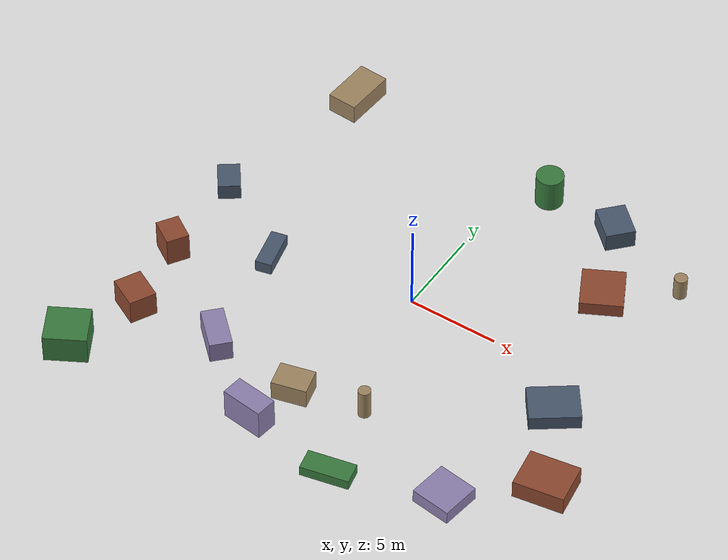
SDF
<sdf version="1.10">
 <world name="robotx_task1_uav_view">
  <gravity>0 0 -9.81</gravity>
  <physics name="physics" type="ode">
   <max_step_size>0.002</max_step_size>
   <real_time_factor>1.0</real_time_factor>
  </physics>
  <scene>
   <ambient>0.14 0.14 0.14 1.0</ambient>
   <background>0.32 0.32 0.38 1.0</background>
   <shadows>true</shadows>
   <grid>false</grid>
  </scene>
  <light name="sun" type="directional">
   <pose>0 0 300 0 0 0</pose>
   <diffuse>0.35 0.35 0.35 1.0</diffuse>
   <specular>0.12 0.12 0.12 1.0</specular>
   <direction>0.12 -0.05 -1.0</direction>
   <attenuation>
    <range>2500</range>
    <constant>0.85</constant>
    <linear>0.001</linear>
    <quadratic>0.00005</quadratic>
   </attenuation>
  </light>
  <plugin filename="gz-sim-physics-system" name="gz::sim::systems::Physics"/>
  <plugin filename="gz-sim-user-commands-system" name="gz::sim::systems::UserCommands"/>
  <plugin filename="gz-sim-scene-broadcaster-system" name="gz::sim::systems::SceneBroadcaster"/>
  <plugin filename="gz-sim-sensors-system" name="gz::sim::systems::Sensors">
   <render_engine>ogre2</render_engine>
  </plugin>
  <model name="scene_clutter_box_000">
   <static>true</static>
   <pose>-10.510 10.721 0.583 0 0 1.509814</pose>
   <link name="link">
    <visual name="v">
     <geometry><box><size>2.830 1.676 1.126</size></box></geometry>
     <material><ambient>0.45 0.38 0.32 1.0</ambient><diffuse>0.62 0.52 0.38 1.0</diffuse></material>
    </visual>
   </link>
  </model>
  <model name="scene_clutter_box_001">
   <static>true</static>
   <pose>-12.513 1.541 0.480 0 0 -0.936353</pose>
   <link name="link">
    <visual name="v">
     <geometry><box><size>1.648 1.210 0.921</size></box></geometry>
     <material><ambient>0.18 0.22 0.28 1.0</ambient><diffuse>0.28 0.34 0.42 1.0</diffuse></material>
    </visual>
   </link>
  </model>
  <model name="scene_clutter_box_002">
   <static>true</static>
   <pose>-11.520 -8.149 0.743 0 0 -0.479108</pose>
   <link name="link">
    <visual name="v">
     <geometry><box><size>1.811 1.491 1.447</size></box></geometry>
     <material><ambient>0.35 0.16 0.12 1.0</ambient><diffuse>0.55 0.28 0.18 1.0</diffuse></material>
    </visual>
   </link>
  </model>
  <model name="scene_clutter_box_003">
   <static>true</static>
   <pose>2.945 -11.992 0.314 0 0 -1.364029</pose>
   <link name="link">
    <visual name="v">
     <geometry><box><size>1.174 2.593 0.588</size></box></geometry>
     <material><ambient>0.12 0.30 0.14 1.0</ambient><diffuse>0.22 0.48 0.24 1.0</diffuse></material>
    </visual>
   </link>
  </model>
  <model name="scene_clutter_box_004">
   <static>true</static>
   <pose>8.570 -10.240 0.406 0 0 -0.138115</pose>
   <link name="link">
    <visual name="v">
     <geometry><box><size>2.188 2.120 0.771</size></box></geometry>
     <material><ambient>0.40 0.35 0.50 1.0</ambient><diffuse>0.55 0.50 0.68 1.0</diffuse></material>
    </visual>
   </link>
  </model>
  <model name="scene_clutter_cyl_005">
   <static>true</static>
   <pose>2.238 -7.738 0.906 0 0 2.147366</pose>
   <link name="link">
    <visual name="v">
     <geometry><cylinder><radius>0.332</radius><length>1.712</length></cylinder></geometry>
     <material><ambient>0.45 0.38 0.32 1.0</ambient><diffuse>0.62 0.52 0.38 1.0</diffuse></material>
    </visual>
   </link>
  </model>
  <model name="scene_clutter_box_006">
   <static>true</static>
   <pose>6.166 9.852 0.547 0 0 2.396833</pose>
   <link name="link">
    <visual name="v">
     <geometry><box><size>2.006 1.596 1.054</size></box></geometry>
     <material><ambient>0.18 0.22 0.28 1.0</ambient><diffuse>0.28 0.34 0.42 1.0</diffuse></material>
    </visual>
   </link>
  </model>
  <model name="scene_clutter_box_007">
   <static>true</static>
   <pose>-12.227 -3.898 0.850 0 0 -2.143069</pose>
   <link name="link">
    <visual name="v">
     <geometry><box><size>1.241 1.537 1.660</size></box></geometry>
     <material><ambient>0.35 0.16 0.12 1.0</ambient><diffuse>0.55 0.28 0.18 1.0</diffuse></material>
    </visual>
   </link>
  </model>
  <model name="scene_clutter_cyl_008">
   <static>true</static>
   <pose>2.004 10.071 0.976 0 0 -1.369597</pose>
   <link name="link">
    <visual name="v">
     <geometry><cylinder><radius>0.749</radius><length>1.851</length></cylinder></geometry>
     <material><ambient>0.12 0.30 0.14 1.0</ambient><diffuse>0.22 0.48 0.24 1.0</diffuse></material>
    </visual>
   </link>
  </model>
  <model name="scene_clutter_box_009">
   <static>true</static>
   <pose>-2.287 -11.240 0.901 0 0 1.442641</pose>
   <link name="link">
    <visual name="v">
     <geometry><box><size>1.164 2.307 1.762</size></box></geometry>
     <material><ambient>0.40 0.35 0.50 1.0</ambient><diffuse>0.55 0.50 0.68 1.0</diffuse></material>
    </visual>
   </link>
  </model>
  <model name="scene_clutter_cyl_010">
   <static>true</static>
   <pose>11.163 7.996 0.675 0 0 0.749036</pose>
   <link name="link">
    <visual name="v">
     <geometry><cylinder><radius>0.356</radius><length>1.250</length></cylinder></geometry>
     <material><ambient>0.45 0.38 0.32 1.0</ambient><diffuse>0.62 0.52 0.38 1.0</diffuse></material>
    </visual>
   </link>
  </model>
  <model name="scene_clutter_box_011">
   <static>true</static>
   <pose>10.026 -2.458 0.425 0 0 0.627296</pose>
   <link name="link">
    <visual name="v">
     <geometry><box><size>2.662 2.107 0.811</size></box></geometry>
     <material><ambient>0.18 0.22 0.28 1.0</ambient><diffuse>0.28 0.34 0.42 1.0</diffuse></material>
    </visual>
   </link>
  </model>
  <model name="scene_clutter_box_012">
   <static>true</static>
   <pose>7.967 5.624 0.407 0 0 0.476707</pose>
   <link name="link">
    <visual name="v">
     <geometry><box><size>2.281 2.443 0.774</size></box></geometry>
     <material><ambient>0.35 0.16 0.12 1.0</ambient><diffuse>0.55 0.28 0.18 1.0</diffuse></material>
    </visual>
   </link>
  </model>
  <model name="scene_clutter_box_013">
   <static>true</static>
   <pose>-12.787 -12.204 0.822 0 0 0.505849</pose>
   <link name="link">
    <visual name="v">
     <geometry><box><size>2.273 2.205 1.603</size></box></geometry>
     <material><ambient>0.12 0.30 0.14 1.0</ambient><diffuse>0.22 0.48 0.24 1.0</diffuse></material>
    </visual>
   </link>
  </model>
  <model name="scene_clutter_box_014">
   <static>true</static>
   <pose>-6.647 -7.894 0.616 0 0 -0.762578</pose>
   <link name="link">
    <visual name="v">
     <geometry><box><size>2.416 1.199 1.193</size></box></geometry>
     <material><ambient>0.40 0.35 0.50 1.0</ambient><diffuse>0.55 0.50 0.68 1.0</diffuse></material>
    </visual>
   </link>
  </model>
  <model name="scene_clutter_box_015">
   <static>true</static>
   <pose>-1.496 -8.533 0.593 0 0 0.242680</pose>
   <link name="link">
    <visual name="v">
     <geometry><box><size>1.882 1.424 1.147</size></box></geometry>
     <material><ambient>0.45 0.38 0.32 1.0</ambient><diffuse>0.62 0.52 0.38 1.0</diffuse></material>
    </visual>
   </link>
  </model>
  <model name="scene_clutter_box_016">
   <static>true</static>
   <pose>-7.761 -1.425 0.362 0 0 -2.913154</pose>
   <link name="link">
    <visual name="v">
     <geometry><box><size>0.886 2.295 0.683</size></box></geometry>
     <material><ambient>0.18 0.22 0.28 1.0</ambient><diffuse>0.28 0.34 0.42 1.0</diffuse></material>
    </visual>
   </link>
  </model>
  <model name="scene_clutter_box_017">
   <static>true</static>
   <pose>12.357 -6.886 0.541 0 0 -2.990510</pose>
   <link name="link">
    <visual name="v">
     <geometry><box><size>2.701 2.240 1.043</size></box></geometry>
     <material><ambient>0.35 0.16 0.12 1.0</ambient><diffuse>0.55 0.28 0.18 1.0</diffuse></material>
    </visual>
   </link>
  </model>
  <model name="uav_dataset_camera">
   <static>false</static>
   <pose>0 0 26 0 0 0</pose>
   <plugin filename="librobotx_overhead_motion_plugin.dylib" name="robotx::OverheadMotionPlugin">
    <radius_x_m>9.96874</radius_x_m>
    <radius_y_m>10.75121</radius_y_m>
    <angular_speed_rad_s>0.046919</angular_speed_rad_s>
    <phase_rad>3.900850</phase_rad>
    <z_wobble_m>0.02917</z_wobble_m>
    <z_wobble_hz>0.06273</z_wobble_hz>
    <z_wobble_phase_rad>2.490311</z_wobble_phase_rad>
   </plugin>
   <link name="camera_link">
    <gravity>false</gravity>
    <sensor name="top_down_rgb" type="camera">
     <always_on>true</always_on>
     <update_rate>20</update_rate>
     <pose>0 0 0 0 1.57079632679 0</pose>
     <camera>
      <horizontal_fov>1.05</horizontal_fov>
      <image><width>1920</width><height>1080</height><format>R8G8B8</format></image>
      <clip><near>0.2</near><far>600</far></clip>
     </camera>
     <topic>/robotx/uav/camera/image_raw</topic>
     <visualize>true</visualize>
    </sensor>
   </link>
  </model>
 </world>
</sdf>
